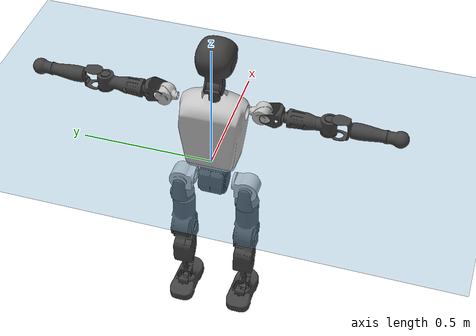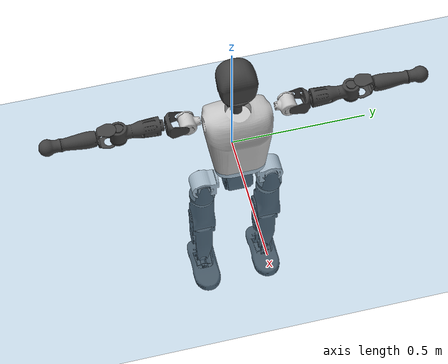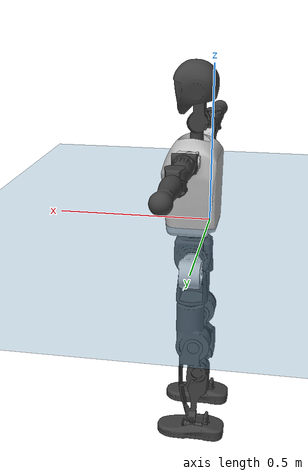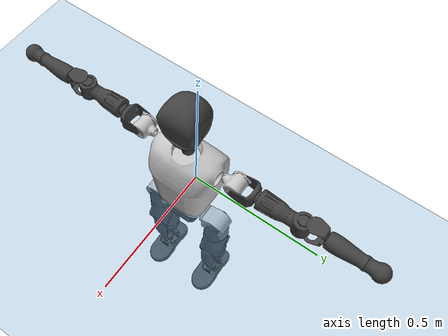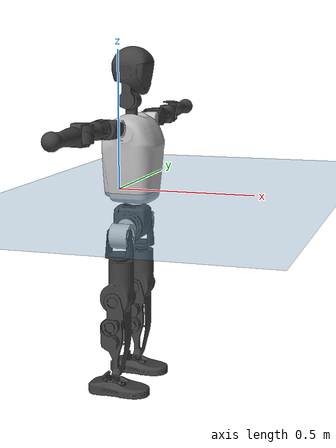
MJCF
<mujoco model="T1">
  <compiler angle="radian" assetdir="assets" balanceinertia="true" inertiafromgeom="false"/>

  <option timestep="0.005" density="1.2" viscosity="2e-05"/>

  <size nkey="1"/>

  <visual>
    <quality shadowsize="8192"/>
    <map shadowclip="0.5"/>
  </visual>

  <default>
    <default class="/">
      <joint armature="0.01" damping="0.01" frictionloss="0.1"/>
      <geom contype="0" conaffinity="0" group="1" solref="-1000 -80"/>
      <site size="0.01 0.005 0.005" group="5"/>
      <general forcelimited="true" biastype="affine" gainprm="25" biasprm="0 -25 -0.6"/>
      <default class="t1">
        <geom rgba="0.25 0.25 0.25 1"/>
        <default class="visual">
          <geom type="mesh" group="2"/>
        </default>
        <default class="collision">
          <geom group="3"/>
        </default>
        <default class="foot">
          <geom size="0.1115 0.05 0.015" type="box" condim="6" group="4" priority="1" solimp="0.015 1 0.015"/>
        </default>
        <default class="reward_collision_sphere">
          <geom group="5" rgba="1 0 0 1"/>
        </default>
      </default>
    </default>
  </default>

  <asset>
    <texture type="skybox" colorspace="auto" name="//unnamed_texture_0" builtin="gradient" rgb1="0.95 0.95 0.95" rgb2="0.95 0.95 0.95" width="100" height="600"/>
    <texture type="2d" colorspace="auto" name="texplane" builtin="checker" rgb1="0.345 0.575 0.748" rgb2="0.345 0.575 0.748" markrgb="1 1 1" width="512" height="512"/>
    <material name="MatPlane" class="/" texture="texplane" texuniform="true" texrepeat="2 2" specular="0.9"/>
    <mesh name="Trunk" class="/" file="Trunk.stl"/>
    <mesh name="H1" class="/" file="H1.stl"/>
    <mesh name="H2" class="/" file="H2.stl"/>
    <mesh name="AL1" class="/" file="AL1.stl"/>
    <mesh name="AL2" class="/" file="AL2.stl"/>
    <mesh name="AL3" class="/" file="AL3.stl"/>
    <mesh name="left_hand_link" class="/" file="left_hand_link.stl"/>
    <mesh name="AR1" class="/" file="AR1.stl"/>
    <mesh name="AR2" class="/" file="AR2.stl"/>
    <mesh name="AR3" class="/" file="AR3.stl"/>
    <mesh name="right_hand_link" class="/" file="right_hand_link.stl"/>
    <mesh name="Waist" class="/" file="Waist.stl"/>
    <mesh name="Hip_Pitch_Left" class="/" file="Hip_Pitch_Left.stl"/>
    <mesh name="Hip_Roll_Left" class="/" file="Hip_Roll_Left.stl"/>
    <mesh name="Hip_Yaw_Left" class="/" file="Hip_Yaw_Left.stl"/>
    <mesh name="Shank_Left" class="/" file="Shank_Left.stl"/>
    <mesh name="Ankle_Cross_Left" class="/" file="Ankle_Cross_Left.stl"/>
    <mesh name="left_foot_link" class="/" file="left_foot_link.stl"/>
    <mesh name="Hip_Pitch_Right" class="/" file="Hip_Pitch_Right.stl"/>
    <mesh name="Hip_Roll_Right" class="/" file="Hip_Roll_Right.stl"/>
    <mesh name="Hip_Yaw_Right" class="/" file="Hip_Yaw_Right.stl"/>
    <mesh name="Shank_Right" class="/" file="Shank_Right.stl"/>
    <mesh name="Ankle_Cross_Right" class="/" file="Ankle_Cross_Right.stl"/>
    <mesh name="right_foot_link" class="/" file="right_foot_link.stl"/>
  </asset>

  <worldbody>
    <geom name="floor" class="/" size="100 100 0.125" type="plane" group="0" material="MatPlane"/>
    <light name="toplight_shadow" class="/" pos="0 0 5" dir="0.0990148 0.0990148 -0.990148" type="directional" ambient="0.04 0.04 0.04" diffuse="0.55 0.55 0.55" specular="0.12 0.12 0.12"/>
    <light name="toplight_fill" class="/" pos="0 0 5" dir="0.0990148 0.0990148 -0.990148" type="directional" castshadow="false" ambient="0.04 0.04 0.04" diffuse="0.3 0.3 0.3" specular="0.08 0.08 0.08"/>
    <body name="trunk" childclass="t1" pos="0.00135077 0.00567254 -0.0026498" quat="0.999999 -0.000960906 -8.23891e-05 -0.00123422">
      <inertial pos="0.0441602 -0.000160975 0.112402" quat="0.999947 0.00380341 -0.00767635 0.00571467" mass="14.591" diaginertia="0.0323449 0.211707 0.0840756"/>
      <joint name="//unnamed_joint_0" type="free" armature="0" damping="0" frictionloss="0"/>
      <geom name="//unnamed_geom_1" class="visual" rgba="0.76 0.76 0.76 1" mesh="Trunk"/>
      <geom name="//unnamed_geom_2" class="collision" size="0.078988 0.105317 0.157976" pos="0.0491275 0 0.130233" type="box"/>
      <geom name="//unnamed_geom_3" class="reward_collision_sphere" size="0.121115" pos="0.0491275 0 0.108528"/>
      <geom name="//unnamed_geom_4" class="reward_collision_sphere" size="0.0157976" pos="0.0491275 0.106713 0"/>
      <geom name="//unnamed_geom_5" class="reward_collision_sphere" size="0.0157976" pos="0.0491275 -0.106713 0"/>
      <geom name="//unnamed_geom_6" class="reward_collision_sphere" size="0.0157976" pos="0.0491275 0.134333 0.19535"/>
      <geom name="//unnamed_geom_7" class="reward_collision_sphere" size="0.0157976" pos="0.0491275 -0.134333 0.19535"/>
      <site name="imu" pos="0.0184561 0.0354885 0.00967695" size="0.0105317"/>
      <camera name="track" pos="0 -2.5109 0" quat="0.707107 0.707107 0 0" mode="trackcom"/>
      <camera name="ego_camera" pos="0.0998927 0 0.455817" quat="-0.5 -0.5 0.5 0.5"/>
      <body name="H1" pos="0.0475294 -0.00263699 0.260539" quat="0.999999 0.000763738 -0.00027353 0.000995877">
        <inertial pos="-0.00321237 -0.000651373 0.0590167" quat="0.742304 -0.0476875 0.00718954 0.668325" mass="0.510573" diaginertia="9.14137e-05 0.000665453 0.000237092"/>
        <joint name="AAHead_yaw" pos="0 0 0" axis="-0.0110462 0.0341422 0.999356" range="-1.49222 1.60569" armature="0.00883409" damping="0.00688545" frictionloss="0.128912"/>
        <geom name="//unnamed_geom_8" class="visual" mesh="H1"/>
        <body name="H2" pos="-0.00655094 -0.00195311 0.0646637" quat="0.999999 -0.000793973 -0.000467463 -0.000498083">
          <inertial pos="0.00714907 0.00979419 0.106385" quat="0.988357 0.103229 -0.0748575 -0.0830048" mass="0.783392" diaginertia="0.000819057 0.00715542 0.00271905"/>
          <joint name="Head_pitch" pos="0 0 0" axis="-0.00479827 -0.999631 0.0267371" stiffness="0.00643407" range="-1.25415 0.305773" armature="0.0112457" damping="0.00196365" frictionloss="0.110321"/>
          <geom name="//unnamed_geom_9" class="visual" mesh="H2"/>
          <geom name="//unnamed_geom_10" class="collision" size="0.0842538" pos="0.00818792 0 0.119381"/>
          <geom name="//unnamed_geom_11" class="reward_collision_sphere" size="0.0947856" pos="0.0163758 0 0.108528"/>
        </body>
      </body>
      <body name="AL1" pos="0.0511295 0.136364 0.239368" quat="1 0.000126013 0.000431839 5.15581e-05">
        <inertial pos="0.00100001 0.0563604 0.00835507" quat="0.472052 0.516751 -0.510935 0.499081" mass="0.543886" diaginertia="0.000429982 0.00343854 0.000378498"/>
        <joint name="Left_Shoulder_Pitch" pos="0 0 0" axis="-0.015969 0.999455 -0.0288962" range="-3.29225 1.2489" armature="0.0102742" damping="0" frictionloss="0.11422"/>
        <geom name="//unnamed_geom_12" class="visual" rgba="0.76 0.76 0.76 1" mesh="AL1"/>
        <body name="AL2" pos="0.00274348 0.0642337 0.00604887" quat="0.999987 -0.000443157 0.00502691 0.000567166">
          <inertial pos="0.00706117 0.0571552 0.000203023" quat="0.490288 0.511977 -0.487787 0.509471" mass="0.19264" diaginertia="0.000145289 0.0011234 0.000273119"/>
          <joint name="Left_Shoulder_Roll" pos="0 0 0" axis="-0.998807 0.0111169 -0.0475564" stiffness="0.0424239" range="-1.72385 1.74109" armature="0.0112878" damping="0.0523281" frictionloss="0.0673111"/>
          <geom name="//unnamed_geom_13" class="visual" mesh="AL2"/>
          <body name="AL3" pos="-0.0037628 0.0667829 -0.0018757" quat="0.999992 0.00392734 0.000344237 -0.00023462">
            <inertial pos="-0.00106647 0.113362 0.000378794" quat="0.696138 0.717898 0.00372516 0.000642116" mass="1.07771" diaginertia="0.00498055 0.0378057 0.00107161"/>
            <joint name="Left_Elbow_Pitch" pos="0 0 0" axis="0.0211856 -0.999589 -0.0193034" stiffness="0.0284882" range="-2.46287 2.44208" armature="0.00617025" damping="0.0425736" frictionloss="0.0784476"/>
            <geom name="//unnamed_geom_14" class="visual" mesh="AL3"/>
            <geom name="//unnamed_geom_15" class="collision" size="0.0315952 0.078988" pos="0 0.0627724 0" quat="0.707105 0.707108 0 0" type="cylinder"/>
            <geom name="//unnamed_geom_16" class="reward_collision_sphere" size="0.0379142"/>
            <body name="left_hand_link" pos="-0.0019918 0.184948 0.00816953" quat="0.999998 0.000128907 0.000413768 -0.00202953">
              <inertial pos="3.53388e-05 0.139238 0.00616187" quat="0.703146 0.711018 -0.00490801 -0.00383945" mass="0.366216" diaginertia="0.00290772 0.0247043 0.000324822"/>
              <joint name="Left_Elbow_Yaw" pos="0 0 0" axis="0.0165459 -0.00251482 0.99986" range="-2.46097 0.036811" armature="0.0103833" damping="0.0205608" frictionloss="0.0888136"/>
              <geom name="//unnamed_geom_17" class="visual" mesh="left_hand_link"/>
              <geom name="//unnamed_geom_18" class="collision" size="0.0315952 0.0921526" pos="0 0.163208 0" quat="0.707105 0.707108 0 0" type="cylinder"/>
              <geom name="//unnamed_geom_19" class="reward_collision_sphere" size="0.0526587"/>
              <geom name="//unnamed_geom_20" class="reward_collision_sphere" size="0.0368611" pos="0 0.138099 0"/>
              <geom name="//unnamed_geom_21" class="reward_collision_sphere" size="0.0368611" pos="0 0.269921 0"/>
            </body>
          </body>
        </body>
      </body>
      <body name="AR1" pos="0.0485153 -0.133796 0.238668" quat="0.999999 -0.000571506 0.00114372 0.00028773">
        <inertial pos="0.00143386 -0.0492324 -0.00756773" quat="0.502407 0.499001 -0.497364 0.501213" mass="0.617944" diaginertia="0.000542788 0.00399168 0.000417153"/>
        <joint name="Right_Shoulder_Pitch" pos="0 0 0" axis="0.00196517 -0.999996 -0.00220277" stiffness="0.00564602" range="-1.22593 3.30185" armature="0.0122819" damping="0.00869147" frictionloss="0.110186"/>
        <geom name="//unnamed_geom_22" class="visual" rgba="0.76 0.76 0.76 1" mesh="AR1"/>
        <body name="AR2" pos="-0.00234913 -0.0651601 0.00285992" quat="0.999999 -0.00101995 0.000367546 -0.000166857">
          <inertial pos="0.00501058 -0.0472909 0.00832825" quat="0.516595 0.475435 -0.515284 0.491501" mass="0.181403" diaginertia="0.000155738 0.00118876 0.000288146"/>
          <joint name="Right_Shoulder_Roll" pos="0 0 0" axis="-0.999752 -0.0190427 -0.0115779" range="-1.73621 1.43144" armature="0.0105094" damping="0.0389521" frictionloss="0.103997"/>
          <geom name="//unnamed_geom_23" class="visual" mesh="AR2"/>
          <body name="AR3" pos="-0.00489789 -0.0773602 0.00349862" quat="0.999999 -0.000771494 -0.000177016 -0.000680639">
            <inertial pos="-0.000760317 -0.104366 -0.0013074" quat="0.710483 0.703714 0.000582895 0.000369913" mass="1.21313" diaginertia="0.00466597 0.0373415 0.000895144"/>
            <joint name="Right_Elbow_Pitch" pos="0 0 0" axis="-0.00372398 0.999992 -0.00111899" stiffness="0.0175017" range="-2.27188 2.27102" armature="0.00643546" damping="0.00465219" frictionloss="0.144438"/>
            <geom name="//unnamed_geom_24" class="visual" mesh="AR3"/>
            <geom name="//unnamed_geom_25" class="collision" size="0.0315952 0.078988" pos="0 -0.0627724 0" quat="0.707105 0.707108 0 0" type="cylinder"/>
            <geom name="//unnamed_geom_26" class="reward_collision_sphere" size="0.0379142"/>
            <body name="right_hand_link" pos="0.000740943 -0.182023 -0.00104344" quat="0.999999 -0.000665151 0.00130938 -0.000637954">
              <inertial pos="-0.000179984 -0.139575 0.00977446" quat="0.693441 0.719398 0.0397919 0.00468374" mass="0.333516" diaginertia="0.0032768 0.0253947 0.000309979"/>
              <joint name="Right_Elbow_Yaw" pos="0 0 0" axis="0.00970912 0.0124042 0.999876" stiffness="0.0350244" range="0.15176 2.26565" armature="0.0102183" damping="0.00291749" frictionloss="0.106253"/>
              <geom name="//unnamed_geom_27" class="visual" mesh="right_hand_link"/>
              <geom name="//unnamed_geom_28" class="collision" size="0.0315952 0.0921526" pos="0 -0.163208 0" quat="0.707105 0.707108 0 0" type="cylinder"/>
              <geom name="//unnamed_geom_29" class="reward_collision_sphere" size="0.0526587"/>
              <geom name="//unnamed_geom_30" class="reward_collision_sphere" size="0.0368611" pos="0 -0.138099 0"/>
              <geom name="//unnamed_geom_31" class="reward_collision_sphere" size="0.0368611" pos="0 -0.269921 0"/>
            </body>
          </body>
        </body>
      </body>
      <body name="Waist" pos="0.0488424 -0.00118589 -0.123639" quat="1 -0.000323866 -0.000279235 -0.00035127">
        <inertial pos="0.00414599 0.00132394 0.00549622" quat="0.982223 0.0108538 -0.187333 0.00505895" mass="3.13329" diaginertia="0.00210333 0.0160131 0.00704352"/>
        <joint name="Waist" pos="0 0 0" axis="-0.00712225 0.0336345 0.999409" stiffness="0.0490591" range="-1.57936 1.52764" armature="0.00996528" damping="0" frictionloss="0.138433"/>
        <geom name="//unnamed_geom_32" class="visual" mesh="Waist"/>
        <body name="Hip_Pitch_Left" pos="-0.00597496 0.12593 0.000957986" quat="1 0.000307474 -0.000302323 -0.000250092">
          <inertial pos="-0.00782253 -0.0112583 -0.0126757" quat="0.96517 0.261206 0.00730959 0.0128173" mass="1.13223" diaginertia="0.000683095 0.00464243 0.00186522"/>
          <joint name="Left_Hip_Pitch" pos="0 0 0" axis="0.00877051 0.999962 6.33643e-05" range="-1.8143 1.42306" armature="0.00939837" damping="0.0358171" frictionloss="0.0982679"/>
          <geom name="//unnamed_geom_33" class="visual" rgba="0.76 0.76 0.76 1" mesh="Hip_Pitch_Left"/>
          <body name="Hip_Roll_Left" pos="-0.00459066 0.000850935 -0.0289824" quat="1 -7.13349e-05 -1.04533e-05 -2.4588e-05">
            <inertial pos="0.0049543 -0.00585682 -0.0599031" quat="0.709726 0.0114459 0.00831812 0.704336" mass="0.505261" diaginertia="0.000643169 0.0056892 0.0008664"/>
            <joint name="Left_Hip_Roll" pos="0 0 0" axis="-0.999971 0.00266684 0.0070704" range="-1.60205 0.164876" armature="0.0116412" damping="0.0136892" frictionloss="0.129312"/>
            <geom name="//unnamed_geom_34" class="visual" mesh="Hip_Roll_Left"/>
            <geom name="//unnamed_geom_35" class="reward_collision_sphere" size="0.0579245"/>
            <body name="Hip_Yaw_Left" pos="0.00132298 -0.00519526 -0.0940049" quat="0.999999 -0.000619383 -0.000845269 -0.000494207">
              <inertial pos="-0.00604014 -0.00145762 -0.0986082" quat="0.671355 -0.0433212 -0.0117476 0.739776" mass="2.78433" diaginertia="0.00979557 0.0825819 0.00405484"/>
              <joint name="Left_Hip_Yaw" pos="0 0 0" axis="-0.00670265 -0.0374129 -0.999277" range="-1.05529 1.11128" armature="0.00949247" damping="0" frictionloss="0.113711"/>
              <geom name="//unnamed_geom_36" class="visual" mesh="Hip_Yaw_Left"/>
              <geom name="//unnamed_geom_37" class="collision" size="0.0526587 0.0842538" type="cylinder"/>
              <body name="Shank_Left" pos="-0.016539 -0.00710211 -0.138818" quat="0.999999 0.000467364 -0.00124376 -0.000504721">
                <inertial pos="-0.0037758 0.009049 -0.135016" quat="0.997364 0.00837732 -0.0291075 0.0659431" mass="1.96464" diaginertia="0.0109988 0.107573 0.00241714"/>
                <joint name="Left_Knee_Pitch" pos="0 0 0" axis="0.0134762 0.999906 -0.00243621" range="-0.0529797 2.32549" armature="0.0103762" damping="0" frictionloss="0.0520439"/>
                <geom name="//unnamed_geom_38" class="visual" mesh="Shank_Left"/>
                <geom name="//unnamed_geom_39" class="collision" size="0.0526587 0.078988" pos="0 0 -0.130233" type="cylinder"/>
                <geom name="//unnamed_geom_40" class="reward_collision_sphere" size="0.0684562"/>
                <body name="Ankle_Cross_Left" pos="-0.000517958 0.00109024 -0.300088" quat="1 -7.01123e-05 -0.000511178 -8.94377e-05">
                  <inertial pos="-0.0047258 -0.0017006 -0.0118121" quat="0.441232 0.553619 0.553867 0.438236" mass="0.100899" diaginertia="1.11637e-05 9.99011e-05 1.87387e-05"/>
                  <joint name="Left_Ankle_Pitch" pos="0 0 0" axis="-0.0285505 0.999005 -0.0342551" stiffness="0.0416454" range="-0.855532 0.336633" armature="0.0104535" damping="0.00215515" frictionloss="0.116223"/>
                  <geom name="//unnamed_geom_41" class="visual" mesh="Ankle_Cross_Left"/>
                  <body name="left_foot_link" pos="-0.00314887 -0.00275581 -0.0130853" quat="0.99999 -0.00349692 0.000871383 0.00263192">
                    <inertial pos="-0.00799963 0.00184085 -0.00865503" quat="-0.00293551 0.611804 0.0269181 0.790546" mass="0.760793" diaginertia="0.000976521 0.00726335 0.0034236"/>
                    <joint name="Left_Ankle_Roll" pos="0 0 0" axis="-0.99997 0.00747399 -0.00189482" range="-0.466104 0.49603" armature="0.0105742" damping="0.0285015" frictionloss="0.100475"/>
                    <geom name="//unnamed_geom_42" class="visual" mesh="left_foot_link"/>
                    <geom name="left_foot" class="foot" size="0.0938363 0.0548952 0.0217024" pos="0.00818792 0 -0.0162792"/>
                    <geom name="//unnamed_geom_44" class="reward_collision_sphere" size="0.054765" pos="0.00818792 0 -0.0162792"/>
                    <geom name="//unnamed_geom_45" class="reward_collision_sphere" size="0.0315952" pos="0.0777853 -0.0288753 -0.0162792"/>
                    <geom name="//unnamed_geom_46" class="reward_collision_sphere" size="0.0315952" pos="-0.0573155 -0.0288753 -0.0162792"/>
                    <site name="left_foot" class="foot" pos="0.00818792 0 -0.0162792" size="0.0105317"/>
                  </body>
                </body>
              </body>
            </body>
          </body>
        </body>
        <body name="Hip_Pitch_Right" pos="0.005521 -0.130527 -0.000337912" quat="0.999998 2.23109e-05 0.00118613 0.00171314">
          <inertial pos="0.00356553 0.00948802 -0.0254388" quat="0.973468 -0.228463 0.0069502 -0.0107725" mass="1.13935" diaginertia="0.000645356 0.00425553 0.00175785"/>
          <joint name="Right_Hip_Pitch" pos="0 0 0" axis="0.000935464 -0.999976 -0.00681779" stiffness="0.00559354" range="-1.58057 1.74733" armature="0.00942963" damping="0.0270502" frictionloss="0.0805179"/>
          <geom name="//unnamed_geom_47" class="visual" rgba="0.76 0.76 0.76 1" mesh="Hip_Pitch_Right"/>
          <body name="Hip_Roll_Right" pos="-0.00660291 -1.13338e-06 -0.0198879" quat="1 7.2357e-05 0.000124562 3.32803e-05">
            <inertial pos="0.00776414 0.00261125 -0.0528433" quat="0.703736 -0.00980005 -0.01674 0.710197" mass="0.402257" diaginertia="0.000641317 0.00460636 0.000768427"/>
            <joint name="Right_Hip_Roll" pos="0 0 0" axis="-0.999992 -0.00159634 -0.0037848" range="-0.135466 1.53923" armature="0.00901526" damping="0.00155533" frictionloss="0.118648"/>
            <geom name="//unnamed_geom_48" class="visual" mesh="Hip_Roll_Right"/>
            <geom name="//unnamed_geom_49" class="reward_collision_sphere" size="0.0579245"/>
            <body name="Hip_Yaw_Right" pos="0.00339109 -0.00133864 -0.0883609" quat="0.999999 0.000590136 -0.000603795 0.00071586">
              <inertial pos="-0.00539111 0.00675256 -0.105253" quat="0.7175 -0.0355558 -0.0336531 0.694835" mass="2.2826" diaginertia="0.00918045 0.0667194 0.00382261"/>
              <joint name="Right_Hip_Yaw" pos="0 0 0" axis="0.0012387 -0.00564922 -0.999983" range="-1.05473 1.01601" armature="0.015145" damping="0.0171841" frictionloss="0.0990004"/>
              <geom name="//unnamed_geom_50" class="visual" mesh="Hip_Yaw_Right"/>
              <geom name="//unnamed_geom_51" class="collision" size="0.0526587 0.0842538" type="cylinder"/>
              <body name="Shank_Right" pos="-0.0192435 -0.00010847 -0.144377" quat="1 -9.33867e-05 5.89953e-05 0.000175695">
                <inertial pos="-0.01379 -0.0101344 -0.133792" quat="0.999289 0.0205572 -0.0258209 -0.0182004" mass="1.85672" diaginertia="0.0100674 0.0980191 0.00272926"/>
                <joint name="Right_Knee_Pitch" pos="0 0 0" axis="0.0298288 -0.999169 0.0277642" range="-2.32927 0.00689311" armature="0.0107168" damping="0.00472232" frictionloss="0.0942849"/>
                <geom name="//unnamed_geom_52" class="visual" mesh="Shank_Right"/>
                <geom name="//unnamed_geom_53" class="collision" size="0.0526587 0.078988" pos="0 0 -0.130233" type="cylinder"/>
                <geom name="//unnamed_geom_54" class="reward_collision_sphere" size="0.0684562"/>
                <body name="Ankle_Cross_Right" pos="-0.00292511 -0.000242712 -0.303733" quat="1 -9.54857e-05 -1.30833e-05 1.85637e-05">
                  <inertial pos="-0.00383345 -0.00297273 -0.00926849" quat="0.44916 0.541689 0.556043 0.442317" mass="0.0905059" diaginertia="9.97598e-06 8.08071e-05 1.76708e-05"/>
                  <joint name="Right_Ankle_Pitch" pos="0 0 0" axis="-0.00987474 -0.998746 -0.0490762" range="-0.339223 0.906337" armature="0.0108114" damping="0.00659363" frictionloss="0.104412"/>
                  <geom name="//unnamed_geom_55" class="visual" mesh="Ankle_Cross_Right"/>
                  <body name="right_foot_link" pos="0.000681503 0.00584702 -0.0184551" quat="0.999999 -0.000904286 0.000337204 0.000268013">
                    <inertial pos="-0.00889634 -0.00143869 -0.0137361" quat="-0.00716068 0.622809 0.0249331 0.781944" mass="0.814109" diaginertia="0.000865977 0.00719334 0.00336141"/>
                    <joint name="Right_Ankle_Roll" pos="0 0 0" axis="-0.999567 -0.0177532 -0.02348" range="-0.45184 0.458737" armature="0.0100033" damping="0" frictionloss="0.146746"/>
                    <geom name="//unnamed_geom_56" class="visual" mesh="right_foot_link"/>
                    <geom name="right_foot" class="foot" size="0.0966634 0.051917 0.0179629" pos="0.00818792 0 -0.0162792"/>
                    <geom name="//unnamed_geom_58" class="reward_collision_sphere" size="0.0421269"/>
                    <geom name="//unnamed_geom_59" class="reward_collision_sphere" size="0.0315952" pos="0.00818792 0 -0.0162792"/>
                    <geom name="//unnamed_geom_60" class="reward_collision_sphere" size="0.0315952" pos="0.0777853 0.0288753 -0.0162792"/>
                    <geom name="//unnamed_geom_61" class="reward_collision_sphere" size="0.0315952" pos="-0.0573155 0.0288753 -0.0162792"/>
                    <site name="right_foot" class="foot" pos="0.00818792 0 -0.0162792" size="0.0105317"/>
                  </body>
                </body>
              </body>
            </body>
          </body>
        </body>
      </body>
    </body>
  </worldbody>

  <contact>
    <pair class="/" geom1="floor" geom2="left_foot" name="//unnamed_contact_0"/>
    <pair class="/" geom1="floor" geom2="right_foot" name="//unnamed_contact_1"/>
  </contact>

  <actuator>
    <general name="AAHead_yaw" class="/" joint="AAHead_yaw" forcerange="-9.30046 9.30046" gainprm="25.7948" biasprm="0 -25.7948 -0.677981"/>
    <general name="Head_pitch" class="/" joint="Head_pitch" forcerange="-7.13054 7.13054" gainprm="25.7948" biasprm="0 -25.7948 -0.677981"/>
    <general name="Left_Shoulder_Pitch" class="/" joint="Left_Shoulder_Pitch" forcerange="-19.9084 19.9084" gainprm="25.7948" biasprm="0 -25.7948 -0.677981"/>
    <general name="Left_Shoulder_Roll" class="/" joint="Left_Shoulder_Roll" forcerange="-17.8058 17.8058" gainprm="25.7948" biasprm="0 -25.7948 -0.677981"/>
    <general name="Left_Elbow_Pitch" class="/" joint="Left_Elbow_Pitch" forcerange="-15.1434 15.1434" gainprm="25.7948" biasprm="0 -25.7948 -0.677981"/>
    <general name="Left_Elbow_Yaw" class="/" joint="Left_Elbow_Yaw" forcerange="-12.5946 12.5946" gainprm="25.7948" biasprm="0 -25.7948 -0.677981"/>
    <general name="Right_Shoulder_Pitch" class="/" joint="Right_Shoulder_Pitch" forcerange="-18.7998 18.7998" gainprm="25.7948" biasprm="0 -25.7948 -0.677981"/>
    <general name="Right_Shoulder_Roll" class="/" joint="Right_Shoulder_Roll" forcerange="-15.0861 15.0861" gainprm="25.7948" biasprm="0 -25.7948 -0.677981"/>
    <general name="Right_Elbow_Pitch" class="/" joint="Right_Elbow_Pitch" forcerange="-16.511 16.511" gainprm="25.7948" biasprm="0 -25.7948 -0.677981"/>
    <general name="Right_Elbow_Yaw" class="/" joint="Right_Elbow_Yaw" forcerange="-22.4031 22.4031" gainprm="25.7948" biasprm="0 -25.7948 -0.677981"/>
    <general name="Waist" class="/" joint="Waist" forcerange="-31.8656 31.8656" gainprm="25.7948" biasprm="0 -25.7948 -0.677981"/>
    <general name="Left_Hip_Pitch" class="/" joint="Left_Hip_Pitch" forcerange="-41.7761 41.7761" gainprm="25.7948" biasprm="0 -25.7948 -0.677981"/>
    <general name="Left_Hip_Roll" class="/" joint="Left_Hip_Roll" forcerange="-29.7848 29.7848" gainprm="25.7948" biasprm="0 -25.7948 -0.677981"/>
    <general name="Left_Hip_Yaw" class="/" joint="Left_Hip_Yaw" forcerange="-31.3385 31.3385" gainprm="25.7948" biasprm="0 -25.7948 -0.677981"/>
    <general name="Left_Knee_Pitch" class="/" joint="Left_Knee_Pitch" forcerange="-64.0414 64.0414" gainprm="25.7948" biasprm="0 -25.7948 -0.677981"/>
    <general name="Left_Ankle_Pitch" class="/" joint="Left_Ankle_Pitch" forcerange="-21.3325 21.3325" gainprm="25.7948" biasprm="0 -25.7948 -0.677981"/>
    <general name="Left_Ankle_Roll" class="/" joint="Left_Ankle_Roll" forcerange="-15.6124 15.6124" gainprm="25.7948" biasprm="0 -25.7948 -0.677981"/>
    <general name="Right_Hip_Pitch" class="/" joint="Right_Hip_Pitch" forcerange="-43.8247 43.8247" gainprm="25.7948" biasprm="0 -25.7948 -0.677981"/>
    <general name="Right_Hip_Roll" class="/" joint="Right_Hip_Roll" forcerange="-32.2711 32.2711" gainprm="25.7948" biasprm="0 -25.7948 -0.677981"/>
    <general name="Right_Hip_Yaw" class="/" joint="Right_Hip_Yaw" forcerange="-34.3033 34.3033" gainprm="25.7948" biasprm="0 -25.7948 -0.677981"/>
    <general name="Right_Knee_Pitch" class="/" joint="Right_Knee_Pitch" forcerange="-68.3799 68.3799" gainprm="25.7948" biasprm="0 -25.7948 -0.677981"/>
    <general name="Right_Ankle_Pitch" class="/" joint="Right_Ankle_Pitch" forcerange="-25.2646 25.2646" gainprm="25.7948" biasprm="0 -25.7948 -0.677981"/>
    <general name="Right_Ankle_Roll" class="/" joint="Right_Ankle_Roll" forcerange="-13.8364 13.8364" gainprm="25.7948" biasprm="0 -25.7948 -0.677981"/>
  </actuator>

  <sensor>
    <gyro site="imu" name="imu_angular_velocity"/>
    <velocimeter site="imu" name="imu_linear_velocity"/>
    <framelinvel objtype="site" objname="left_foot" name="left_foot_global_linear_velocity"/>
    <framelinvel objtype="site" objname="right_foot" name="right_foot_global_linear_velocity"/>
  </sensor>

  <keyframe>
    <key name="home" qpos="0 0 0.6385 1 0 0 0 0 0 0 1.4 0 -0.4 0 -1.4 0 0.4 0 -0.4 0 0 0.8 -0.4 0 0.4 0 0 -0.8 0.4 0"/>
  </keyframe>
</mujoco>
